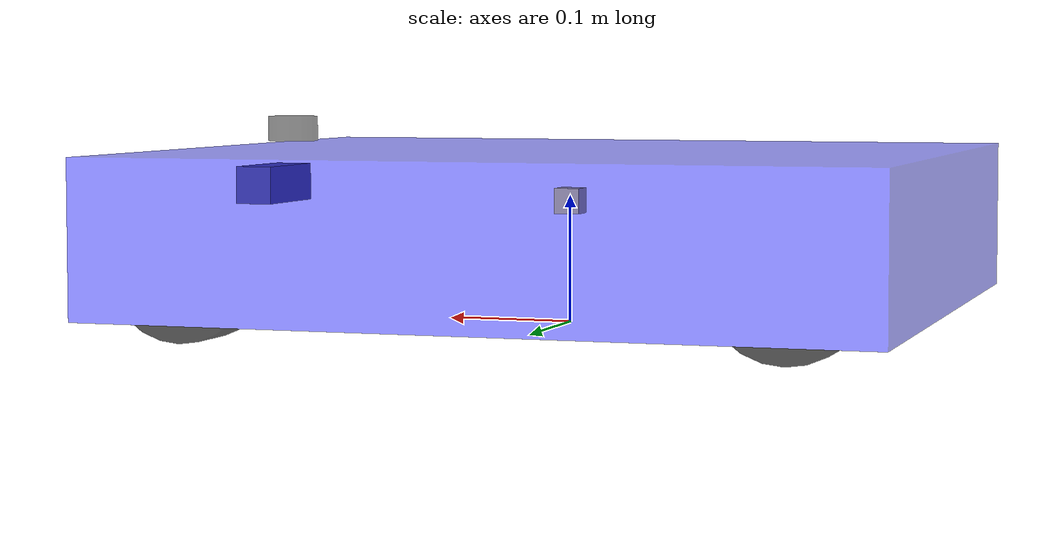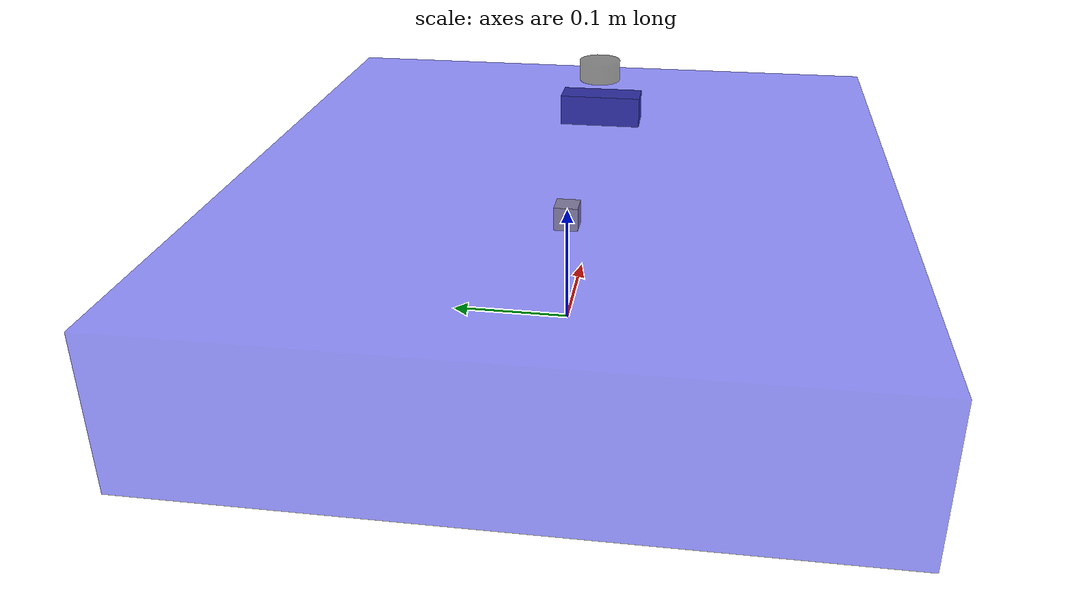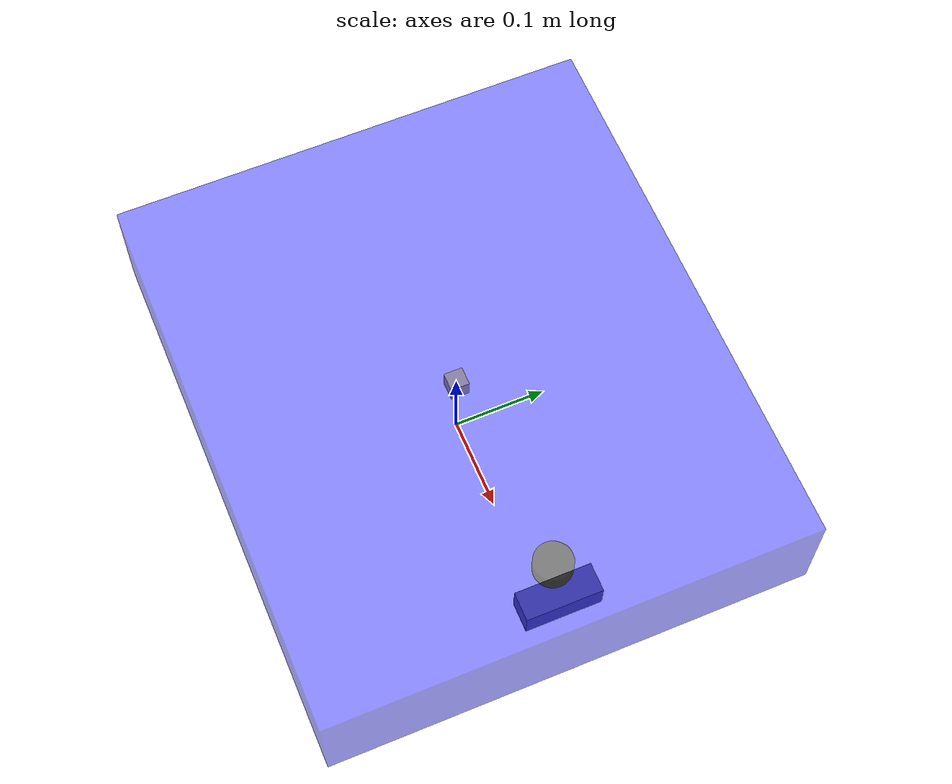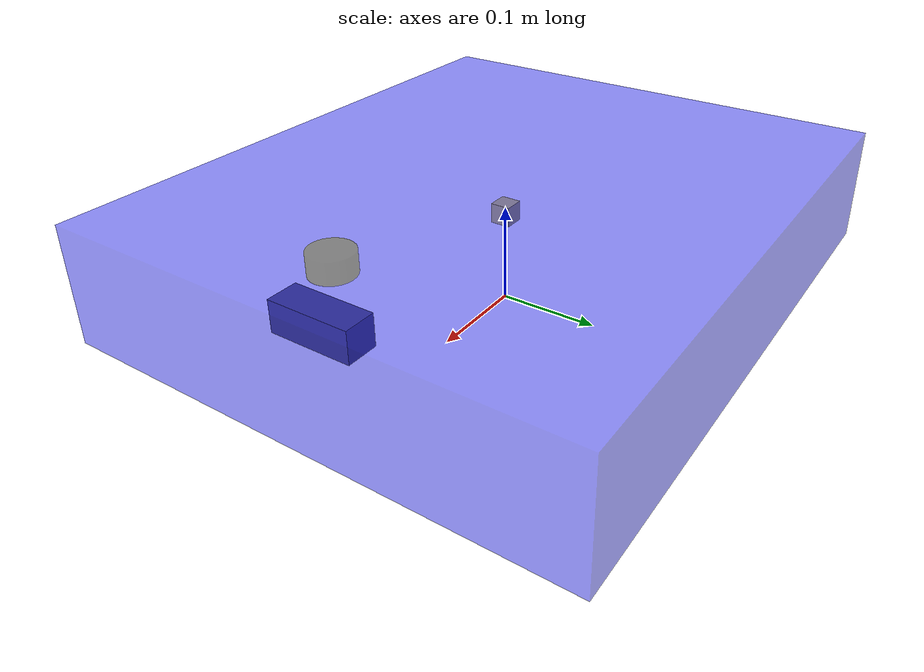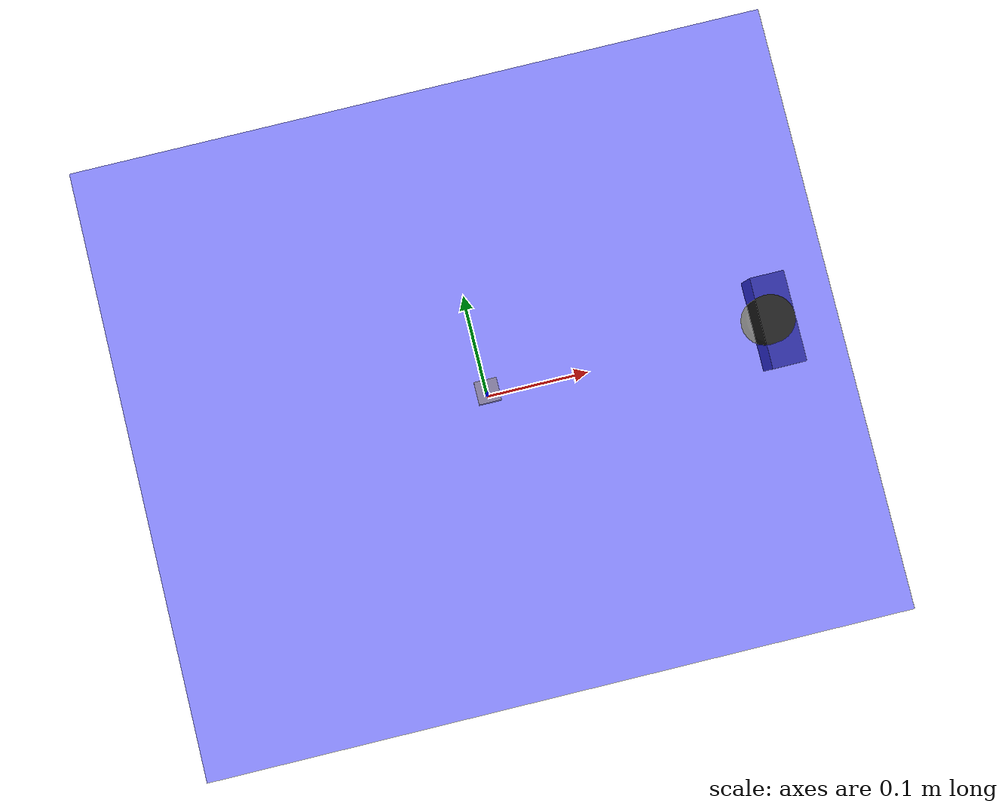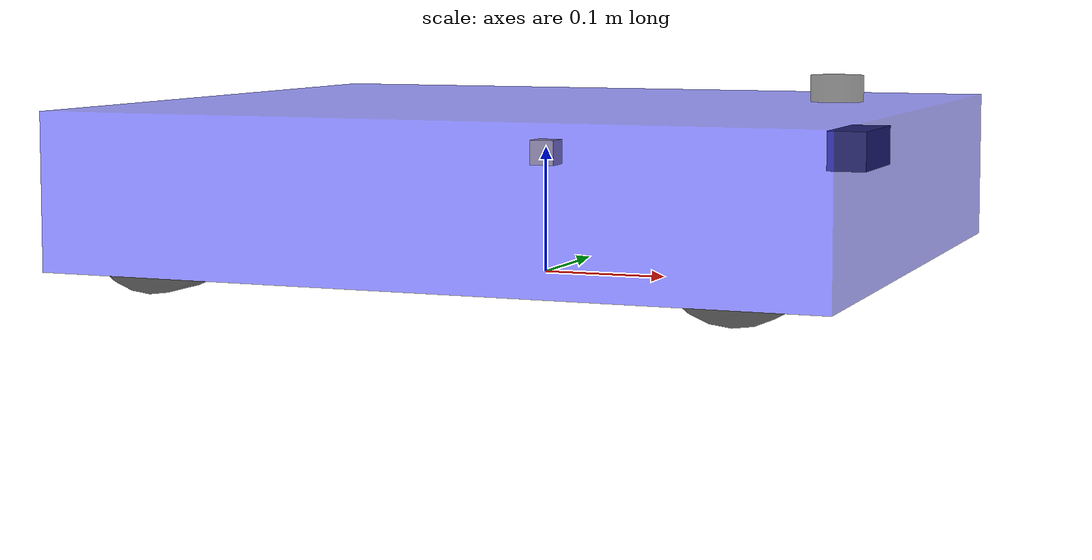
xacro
<?xml version="1.0"?>
<robot name="fishbot" xmlns:xacro="http://www.ros.org/wiki/xacro">

  <xacro:arg name="controllers_file" default="/tmp/four_wheel_controllers.yaml"/>

  <!-- Robot Footprint -->
  <link name="base_footprint"/>

  <joint name="base_joint" type="fixed">
    <parent link="base_footprint"/>
    <child link="base_link"/>
    <origin xyz="0.0 0.0 0.076" rpy="0 0 0"/>
  </joint>

  <!-- base link -->
  <link name="base_link">
  	<visual>
      <origin xyz="0 0 0.0" rpy="0 0 0"/>
      <geometry>
  		<box size="0.60 0.52 0.12"/>
      </geometry>
      <material name="blue">
      	<color rgba="0.1 0.1 1.0 0.5" />
      </material>
    </visual>
    <collision>
      <origin xyz="0 0 0.0" rpy="0 0 0"/>
      <geometry>
		<box size="0.60 0.52 0.12"/>
      </geometry>
      <material name="blue">
      	<color rgba="0.1 0.1 1.0 0.5" />
      </material>
    </collision>
    <inertial>
      <mass value="0.2"/>
      <inertia ixx="0.0122666" ixy="0" ixz="0" iyy="0.0122666" iyz="0" izz="0.02"/>
    </inertial>
  </link>

  <!-- laser link -->
  <link name="laser_link">
    <visual>
      <origin xyz="0 0 0" rpy="0 0 0"/>
      <geometry>
        <cylinder length="0.02" radius="0.02"/>
      </geometry>
      <material name="black">
        <color rgba="0.0 0.0 0.0 0.5" />
      </material>
    </visual>
    <collision>
      <origin xyz="0 0 0" rpy="0 0 0"/>
      <geometry>
        <cylinder length="0.02" radius="0.02"/>
      </geometry>
      <material name="black">
        <color rgba="0.0 0.0 0.0 0.5" />
      </material>
    </collision>
    <inertial>
    <mass value="0.1"/>
      <inertia ixx="0.000190416666667" ixy="0" ixz="0" iyy="0.0001904" iyz="0" izz="0.00036"/>
    </inertial>
  </link>

  <!-- laser joint -->
  <joint name="laser_joint" type="fixed">
      <parent link="base_link" />
      <child link="laser_link" />
      <origin xyz="0.2375 0 0.075" />
  </joint>

  <link name="imu_link">
  	<visual>
      <origin xyz="0 0 0.0" rpy="0 0 0"/>
      <geometry>
		    <box size="0.02 0.02 0.02"/>
      </geometry>
    </visual>
    <collision>
      <origin xyz="0 0 0.0" rpy="0 0 0"/>
      <geometry>
		    <box size="0.02 0.02 0.02"/>
      </geometry>
    </collision>
    <inertial>
      <mass value="0.1"/>
        <inertia ixx="0.000190416666667" ixy="0" ixz="0" iyy="0.0001904" iyz="0" izz="0.00036"/>
      </inertial>
  </link>

  <!-- imu joint -->
  <joint name="imu_joint" type="fixed">
      <parent link="base_link" />
      <child link="imu_link" />
      <origin xyz="0 0 0.02" />
  </joint>

  <!-- 四轮全向（四个独立转向 + 四个独立驱动） -->
  <!-- 参数：左右轮距 0.42m，前后轮距 0.45m，轮半径 0.06m，转向偏移 y=0 -->

  <!-- 前左转向电机（上层） -->
  <link name="front_left_steer_link">
      <visual>
        <origin xyz="0 0 0.03" rpy="0 0 0"/>
        <geometry>
          <cylinder length="0.06" radius="0.018"/>
        </geometry>
        <material name="gray">
          <color rgba="0.5 0.5 0.5 0.8" />
        </material>
      </visual>
      <inertial>
        <mass value="0.2"/>
        <inertia ixx="0.0002" ixy="0" ixz="0" iyy="0.0002" iyz="0" izz="0.0002"/>
      </inertial>
  </link>

  <joint name="front_left_steer_joint" type="revolute">
      <parent link="base_link" />
      <child link="front_left_steer_link" />
      <origin xyz="0.225 0.21 -0.016" rpy="0 0 0" />
      <axis xyz="0 0 1" />
      <limit lower="-1.5708" upper="1.5708" effort="20.0" velocity="1.5"/>
  </joint>

  <link name="front_left_wheel_link">
      <visual>
        <origin xyz="0 0 0" rpy="1.57079 0 0"/>
        <geometry>
          <cylinder length="0.045" radius="0.06"/>
        </geometry>
        <material name="black">
          <color rgba="0.0 0.0 0.0 0.7" />
        </material>
      </visual>
      <collision>
        <origin xyz="0 0 0" rpy="1.57079 0 0"/>
        <geometry>
          <cylinder length="0.045" radius="0.06"/>
        </geometry>
      </collision>
      <inertial>
        <mass value="0.25"/>
        <inertia ixx="0.0003" ixy="0" ixz="0" iyy="0.0003" iyz="0" izz="0.0005"/>
      </inertial>
  </link>

  <joint name="front_left_wheel_joint" type="continuous">
      <parent link="front_left_steer_link" />
      <child link="front_left_wheel_link" />
      <origin xyz="0 0 0" rpy="0 0 0" />
      <axis xyz="0 1 0" />
  </joint>

  <!-- 前右转向电机（上层） -->
  <link name="front_right_steer_link">
      <visual>
        <origin xyz="0 0 0.03" rpy="0 0 0"/>
        <geometry>
          <cylinder length="0.06" radius="0.018"/>
        </geometry>
        <material name="gray">
          <color rgba="0.5 0.5 0.5 0.8" />
        </material>
      </visual>
      <inertial>
        <mass value="0.2"/>
        <inertia ixx="0.0002" ixy="0" ixz="0" iyy="0.0002" iyz="0" izz="0.0002"/>
      </inertial>
  </link>

  <joint name="front_right_steer_joint" type="revolute">
      <parent link="base_link" />
      <child link="front_right_steer_link" />
      <origin xyz="0.225 -0.21 -0.016" rpy="0 0 0" />
      <axis xyz="0 0 1" />
      <limit lower="-1.5708" upper="1.5708" effort="20.0" velocity="1.5"/>
  </joint>

  <link name="front_right_wheel_link">
      <visual>
        <origin xyz="0 0 0" rpy="1.57079 0 0"/>
        <geometry>
          <cylinder length="0.045" radius="0.06"/>
        </geometry>
        <material name="black">
          <color rgba="0.0 0.0 0.0 0.7" />
        </material>
      </visual>
      <collision>
        <origin xyz="0 0 0" rpy="1.57079 0 0"/>
        <geometry>
          <cylinder length="0.045" radius="0.06"/>
        </geometry>
      </collision>
      <inertial>
        <mass value="0.25"/>
        <inertia ixx="0.0003" ixy="0" ixz="0" iyy="0.0003" iyz="0" izz="0.0005"/>
      </inertial>
  </link>

  <joint name="front_right_wheel_joint" type="continuous">
      <parent link="front_right_steer_link" />
      <child link="front_right_wheel_link" />
      <origin xyz="0 0 0" rpy="0 0 0" />
      <axis xyz="0 1 0" />
  </joint>

  <!-- 后左转向电机（上层） -->
  <link name="rear_left_steer_link">
      <visual>
        <origin xyz="0 0 0.03" rpy="0 0 0"/>
        <geometry>
          <cylinder length="0.06" radius="0.018"/>
        </geometry>
        <material name="gray">
          <color rgba="0.5 0.5 0.5 0.8" />
        </material>
      </visual>
      <inertial>
        <mass value="0.2"/>
        <inertia ixx="0.0002" ixy="0" ixz="0" iyy="0.0002" iyz="0" izz="0.0002"/>
      </inertial>
  </link>

  <joint name="rear_left_steer_joint" type="revolute">
      <parent link="base_link" />
      <child link="rear_left_steer_link" />
      <origin xyz="-0.225 0.21 -0.016" rpy="0 0 0" />
      <axis xyz="0 0 1" />
      <limit lower="-1.5708" upper="1.5708" effort="20.0" velocity="1.5"/>
  </joint>

  <link name="rear_left_wheel_link">
      <visual>
        <origin xyz="0 0 0" rpy="1.57079 0 0"/>
        <geometry>
          <cylinder length="0.045" radius="0.06"/>
        </geometry>
        <material name="black">
          <color rgba="0.0 0.0 0.0 0.7" />
        </material>
      </visual>
      <collision>
        <origin xyz="0 0 0" rpy="1.57079 0 0"/>
        <geometry>
          <cylinder length="0.045" radius="0.06"/>
        </geometry>
      </collision>
      <inertial>
        <mass value="0.25"/>
        <inertia ixx="0.0003" ixy="0" ixz="0" iyy="0.0003" iyz="0" izz="0.0005"/>
      </inertial>
  </link>

  <joint name="rear_left_wheel_joint" type="continuous">
      <parent link="rear_left_steer_link" />
      <child link="rear_left_wheel_link" />
      <origin xyz="0 0 0" rpy="0 0 0" />
      <axis xyz="0 1 0" />
  </joint>

  <!-- 后右转向电机（上层） -->
  <link name="rear_right_steer_link">
      <visual>
        <origin xyz="0 0 0.03" rpy="0 0 0"/>
        <geometry>
          <cylinder length="0.06" radius="0.018"/>
        </geometry>
        <material name="gray">
          <color rgba="0.5 0.5 0.5 0.8" />
        </material>
      </visual>
      <inertial>
        <mass value="0.2"/>
        <inertia ixx="0.0002" ixy="0" ixz="0" iyy="0.0002" iyz="0" izz="0.0002"/>
      </inertial>
  </link>

  <joint name="rear_right_steer_joint" type="revolute">
      <parent link="base_link" />
      <child link="rear_right_steer_link" />
      <origin xyz="-0.225 -0.21 -0.016" rpy="0 0 0" />
      <axis xyz="0 0 1" />
      <limit lower="-1.5708" upper="1.5708" effort="20.0" velocity="1.5"/>
  </joint>

  <link name="rear_right_wheel_link">
      <visual>
        <origin xyz="0 0 0" rpy="1.57079 0 0"/>
        <geometry>
          <cylinder length="0.045" radius="0.06"/>
        </geometry>
        <material name="black">
          <color rgba="0.0 0.0 0.0 0.7" />
        </material>
      </visual>
      <collision>
        <origin xyz="0 0 0" rpy="1.57079 0 0"/>
        <geometry>
          <cylinder length="0.045" radius="0.06"/>
        </geometry>
      </collision>
      <inertial>
        <mass value="0.25"/>
        <inertia ixx="0.0003" ixy="0" ixz="0" iyy="0.0003" iyz="0" izz="0.0005"/>
      </inertial>
  </link>

  <joint name="rear_right_wheel_joint" type="continuous">
      <parent link="rear_right_steer_link" />
      <child link="rear_right_wheel_link" />
      <origin xyz="0 0 0" rpy="0 0 0" />
      <axis xyz="0 1 0" />
  </joint>

  <!-- 轮胎摩擦参数 -->
  <gazebo reference="front_left_wheel_link">
    <mu1 value="0.9"/>
    <mu2 value="0.9"/>
    <kp value="1000000.0" />
    <kd value="10.0" />
    <material>Gazebo/Black</material>
  </gazebo>

  <gazebo reference="front_right_wheel_link">
    <mu1 value="0.9"/>
    <mu2 value="0.9"/>
    <kp value="1000000.0" />
    <kd value="10.0" />
    <material>Gazebo/Black</material>
  </gazebo>

  <gazebo reference="rear_left_wheel_link">
    <mu1 value="0.9"/>
    <mu2 value="0.9"/>
    <kp value="1000000.0" />
    <kd value="10.0" />
    <material>Gazebo/Black</material>
  </gazebo>

  <gazebo reference="rear_right_wheel_link">
    <mu1 value="0.9"/>
    <mu2 value="0.9"/>
    <kp value="1000000.0" />
    <kd value="10.0" />
    <material>Gazebo/Black</material>
  </gazebo>

  <!-- 发布轮组关节状态；四轮全向控制建议通过 ros2_control 配置 8 个关节 -->
  <gazebo>
    <plugin name='joint_state_publisher' filename='libgazebo_ros_joint_state_publisher.so'>
      <ros>
        <namespace>/</namespace>
      </ros>
      <update_rate>50</update_rate>
      <joint_name>front_left_steer_joint</joint_name>
      <joint_name>front_left_wheel_joint</joint_name>
      <joint_name>front_right_steer_joint</joint_name>
      <joint_name>front_right_wheel_joint</joint_name>
      <joint_name>rear_left_steer_joint</joint_name>
      <joint_name>rear_left_wheel_joint</joint_name>
      <joint_name>rear_right_steer_joint</joint_name>
      <joint_name>rear_right_wheel_joint</joint_name>
    </plugin>
  </gazebo>

  <ros2_control name="fishbot_four_wheel_system" type="system">
    <hardware>
      <plugin>gazebo_ros2_control/GazeboSystem</plugin>
    </hardware>

    <joint name="front_left_steer_joint">
      <command_interface name="position"/>
      <state_interface name="position"/>
      <state_interface name="velocity"/>
    </joint>
    <joint name="front_right_steer_joint">
      <command_interface name="position"/>
      <state_interface name="position"/>
      <state_interface name="velocity"/>
    </joint>
    <joint name="rear_left_steer_joint">
      <command_interface name="position"/>
      <state_interface name="position"/>
      <state_interface name="velocity"/>
    </joint>
    <joint name="rear_right_steer_joint">
      <command_interface name="position"/>
      <state_interface name="position"/>
      <state_interface name="velocity"/>
    </joint>

    <joint name="front_left_wheel_joint">
      <command_interface name="velocity"/>
      <state_interface name="position"/>
      <state_interface name="velocity"/>
    </joint>
    <joint name="front_right_wheel_joint">
      <command_interface name="velocity"/>
      <state_interface name="position"/>
      <state_interface name="velocity"/>
    </joint>
    <joint name="rear_left_wheel_joint">
      <command_interface name="velocity"/>
      <state_interface name="position"/>
      <state_interface name="velocity"/>
    </joint>
    <joint name="rear_right_wheel_joint">
      <command_interface name="velocity"/>
      <state_interface name="position"/>
      <state_interface name="velocity"/>
    </joint>
  </ros2_control>

  <gazebo>
    <plugin name="gazebo_ros2_control" filename="libgazebo_ros2_control.so">
      <parameters>$(arg controllers_file)</parameters>
    </plugin>
  </gazebo>

    <gazebo reference="imu_link">
      <sensor name="imu_sensor" type="imu">
      <plugin filename="libgazebo_ros_imu_sensor.so" name="imu_plugin">
          <ros>
            <namespace>/</namespace>
            <remapping>~/out:=imu</remapping>
          </ros>
          <initial_orientation_as_reference>false</initial_orientation_as_reference>
        </plugin>
        <always_on>true</always_on>
        <update_rate>100</update_rate>
        <visualize>true</visualize>
        <imu>
          <angular_velocity>
            <x>
              <noise type="gaussian">
                <mean>0.0</mean>
                <stddev>2e-4</stddev>
                <bias_mean>0.0000075</bias_mean>
                <bias_stddev>0.0000008</bias_stddev>
              </noise>
            </x>
            <y>
              <noise type="gaussian">
                <mean>0.0</mean>
                <stddev>2e-4</stddev>
                <bias_mean>0.0000075</bias_mean>
                <bias_stddev>0.0000008</bias_stddev>
              </noise>
            </y>
            <z>
              <noise type="gaussian">
                <mean>0.0</mean>
                <stddev>2e-4</stddev>
                <bias_mean>0.0000075</bias_mean>
                <bias_stddev>0.0000008</bias_stddev>
              </noise>
            </z>
          </angular_velocity>
          <linear_acceleration>
            <x>
              <noise type="gaussian">
                <mean>0.0</mean>
                <stddev>1.7e-2</stddev>
                <bias_mean>0.1</bias_mean>
                <bias_stddev>0.001</bias_stddev>
              </noise>
            </x>
            <y>
              <noise type="gaussian">
                <mean>0.0</mean>
                <stddev>1.7e-2</stddev>
                <bias_mean>0.1</bias_mean>
                <bias_stddev>0.001</bias_stddev>
              </noise>
            </y>
            <z>
              <noise type="gaussian">
                <mean>0.0</mean>
                <stddev>1.7e-2</stddev>
                <bias_mean>0.1</bias_mean>
                <bias_stddev>0.001</bias_stddev>
              </noise>
            </z>
          </linear_acceleration>
        </imu>
      </sensor>
    </gazebo>

  <!-- simple depth camera link -->
  <link name="camera_link">
    <visual>
      <origin xyz="0 0 0" rpy="0 0 1.5708"/>
      <geometry>
        <!-- 长条盒子模拟相机 -->
        <box size="0.08 0.03 0.03"/>
      </geometry>
      <material name="gray">
        <color rgba="0.3 0.3 0.3 1.0" />
      </material>
    </visual>
    <collision>
      <origin xyz="0 0 0" rpy="0 0 0"/>
      <geometry>
        <box size="0.08 0.03 0.03"/>
      </geometry>
    </collision>
    <inertial>
      <mass value="0.1"/>
      <inertia ixx="1e-4" ixy="0" ixz="0" iyy="1e-4" iyz="0" izz="1e-4"/>
    </inertial>
  </link>

  <!-- camera joint：左前上方，朝前 -->
  <joint name="camera_joint" type="fixed">
    <parent link="base_link" />
    <child link="camera_link" />
    <!-- x=前, y=左, z=上：不和雷达共线，就不会挡住扫描面 -->
    <origin xyz="0.255 0.0 0.03" rpy="0 0 0" />
  </joint>

  <link name="camera_optical_link"/>

  <joint name="camera_optical_joint" type="fixed">
    <parent link="camera_link" />
    <child link="camera_optical_link" />
    <origin xyz="0 0 0" rpy="-1.5708 0 -1.5708" />
  </joint>

  <gazebo reference="laser_link">
    <sensor name="laser_sensor" type="ray">
      <always_on>true</always_on>
      <visualize>false</visualize>
      <update_rate>30</update_rate>
      <pose>0 0 0 0 0 0</pose>
      <ray>
          <scan>
            <horizontal>
              <samples>2000</samples>
              <resolution>1.000000</resolution>
              <min_angle>0.000000</min_angle>
              <max_angle>6.280000</max_angle>
            </horizontal>
          </scan>
          <range>
            <min>0.120000</min>
            <max>30.0</max>
            <resolution>0.015000</resolution>
          </range>
          <noise>
            <type>gaussian</type>
            <mean>0.0</mean>
            <stddev>0.01</stddev>
          </noise>
      </ray>

      <plugin name="laserscan" filename="libgazebo_ros_ray_sensor.so">
        <ros>
          <remapping>~/out:=scan</remapping>
        </ros>
        <output_type>sensor_msgs/LaserScan</output_type>
        <frame_name>laser_link</frame_name>
      </plugin>
    </sensor>
  </gazebo>

  <!-- ================ Gazebo 上的相机 + 前向“深度扫描” ================ -->
  <gazebo reference="camera_link">

    <!-- RGBD 相机 -->
    <sensor name="rgbd_camera" type="depth">
      <always_on>true</always_on>
      <update_rate>30</update_rate>
      <visualize>true</visualize>

      <camera name="camera">
        <horizontal_fov>1.518</horizontal_fov>
        <image>
          <width>848</width>
          <height>480</height>
          <format>R8G8B8</format>
        </image>
        <clip>
          <near>0.20</near>
          <far>10.0</far>
        </clip>
        <noise>
          <type>gaussian</type>
          <mean>0.0</mean>
          <stddev>0.007</stddev>
        </noise>
      </camera>

      <plugin name="rgbd_camera_plugin" filename="libgazebo_ros_camera.so">
        <camera_name>rgbd_camera</camera_name>
        <frame_name>camera_optical_link</frame_name>
        <hack_baseline>0.07</hack_baseline>
        <min_depth>0.20</min_depth>
        <max_depth>10.0</max_depth>
        <ros>
          <namespace>/camera</namespace>
          <remapping>image_raw:=image/image_raw</remapping>
          <remapping>image_depth:=depth/image_raw</remapping>
          <remapping>camera_info:=image/camera_info</remapping>
          <remapping>depth/camera_info:=depth/camera_info</remapping>
          <remapping>points:=depth/points</remapping>
        </ros>
      </plugin>
    </sensor>

  </gazebo>

</robot>
